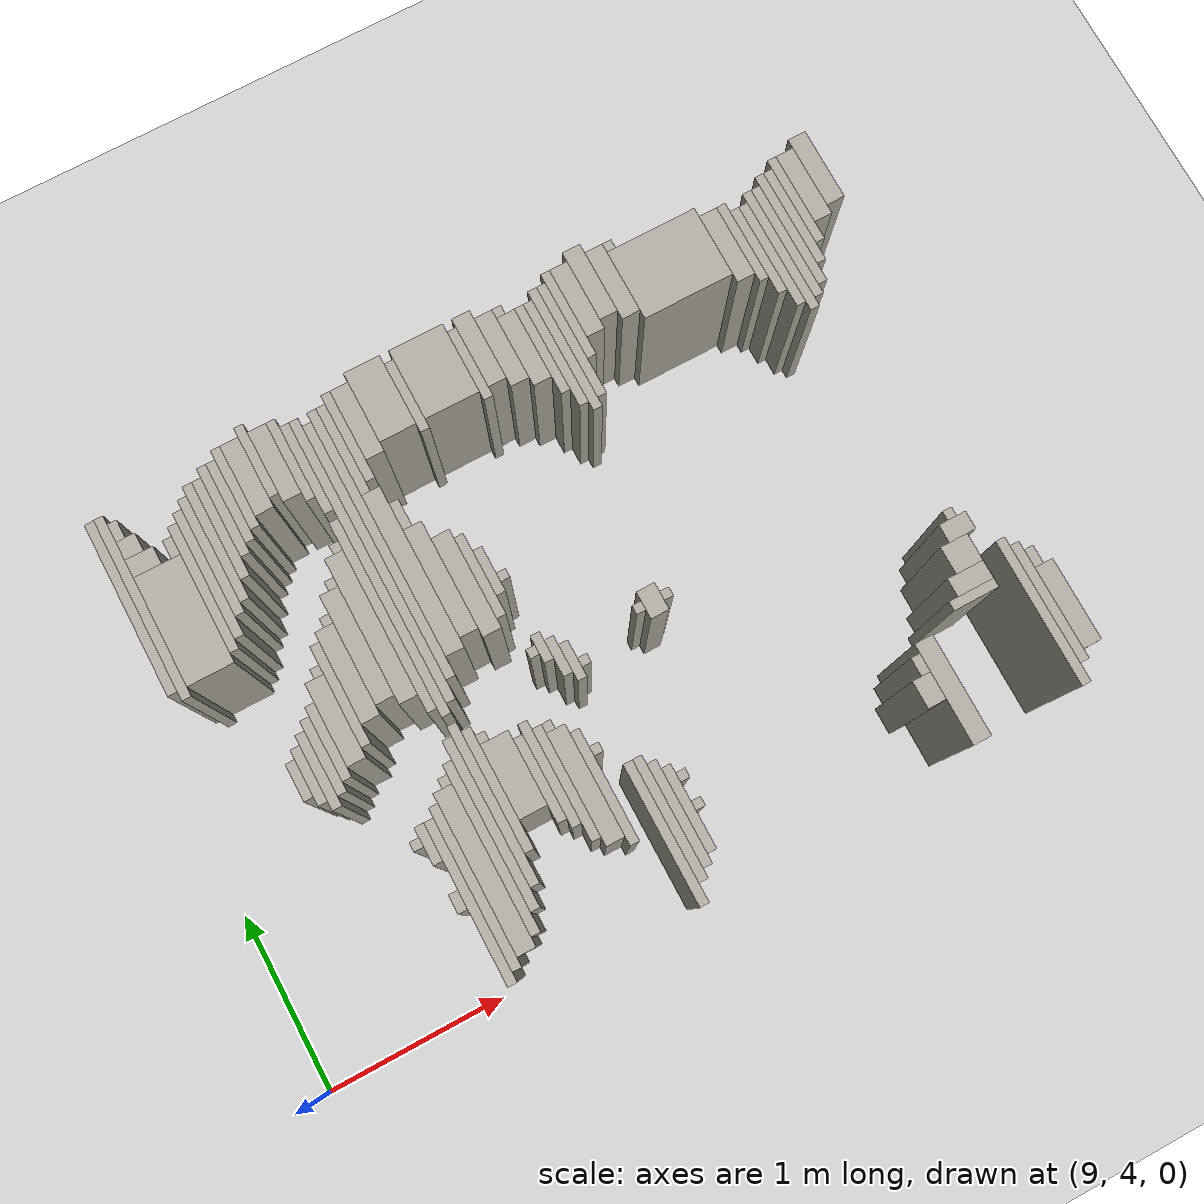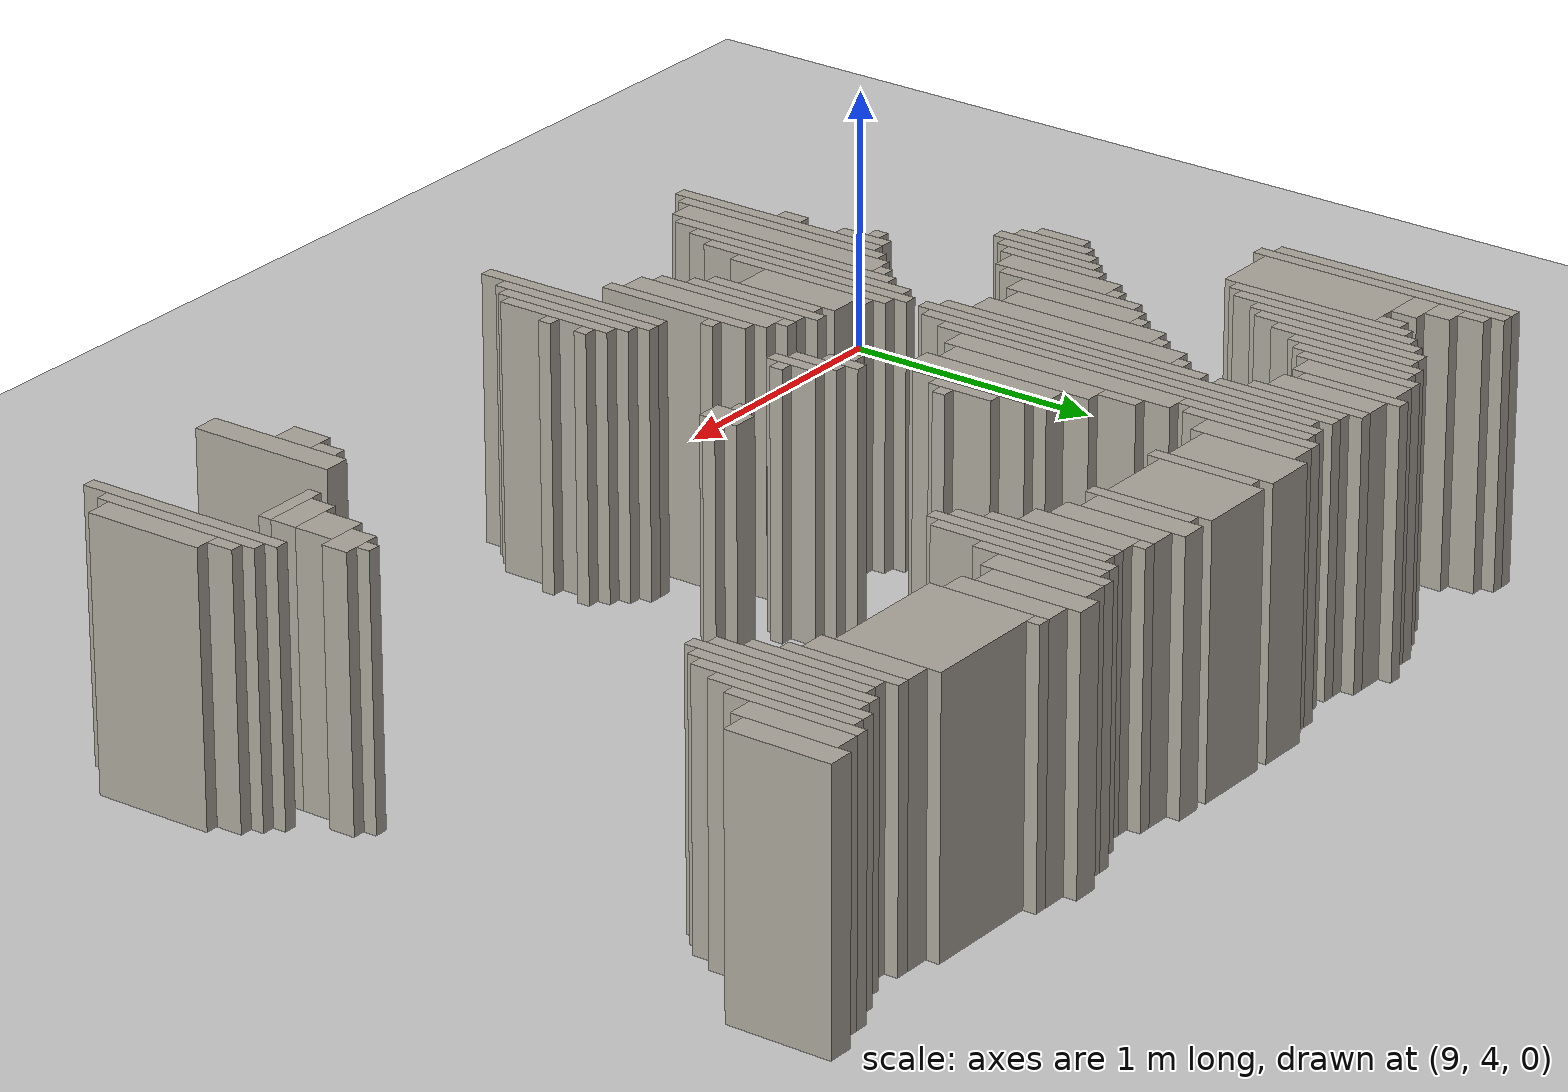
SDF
<sdf version="1.6">
 <world name="fr079_office">
  <include><uri>model://sun</uri></include>
  <include><uri>model://ground_plane</uri></include>
  <model name="fr079_office_walls">
   <static>true</static>
   <link name="w2606">
    <pose>11.077 4.319 0.500 0 0 0</pose>
    <collision name="c"><geometry><box><size>0.050 0.750 1.000</size></box></geometry></collision>
    <visual name="v">
     <geometry><box><size>0.050 0.750 1.000</size></box></geometry>
     <material><ambient>0.68 0.66 0.62 1</ambient><diffuse>0.68 0.66 0.62 1</diffuse></material>
    </visual>
   </link>
   <link name="w2616">
    <pose>12.602 4.269 0.500 0 0 0</pose>
    <collision name="c"><geometry><box><size>0.100 0.550 1.000</size></box></geometry></collision>
    <visual name="v">
     <geometry><box><size>0.100 0.550 1.000</size></box></geometry>
     <material><ambient>0.68 0.66 0.62 1</ambient><diffuse>0.68 0.66 0.62 1</diffuse></material>
    </visual>
   </link>
   <link name="w2617">
    <pose>13.177 4.394 0.500 0 0 0</pose>
    <collision name="c"><geometry><box><size>0.050 0.800 1.000</size></box></geometry></collision>
    <visual name="v">
     <geometry><box><size>0.050 0.800 1.000</size></box></geometry>
     <material><ambient>0.68 0.66 0.62 1</ambient><diffuse>0.68 0.66 0.62 1</diffuse></material>
    </visual>
   </link>
   <link name="w2627">
    <pose>10.127 4.469 0.500 0 0 0</pose>
    <collision name="c"><geometry><box><size>0.050 0.850 1.000</size></box></geometry></collision>
    <visual name="v">
     <geometry><box><size>0.050 0.850 1.000</size></box></geometry>
     <material><ambient>0.68 0.66 0.62 1</ambient><diffuse>0.68 0.66 0.62 1</diffuse></material>
    </visual>
   </link>
   <link name="w2628">
    <pose>11.127 4.369 0.500 0 0 0</pose>
    <collision name="c"><geometry><box><size>0.050 0.650 1.000</size></box></geometry></collision>
    <visual name="v">
     <geometry><box><size>0.050 0.650 1.000</size></box></geometry>
     <material><ambient>0.68 0.66 0.62 1</ambient><diffuse>0.68 0.66 0.62 1</diffuse></material>
    </visual>
   </link>
   <link name="w2641">
    <pose>10.177 4.519 0.500 0 0 0</pose>
    <collision name="c"><geometry><box><size>0.050 0.850 1.000</size></box></geometry></collision>
    <visual name="v">
     <geometry><box><size>0.050 0.850 1.000</size></box></geometry>
     <material><ambient>0.68 0.66 0.62 1</ambient><diffuse>0.68 0.66 0.62 1</diffuse></material>
    </visual>
   </link>
   <link name="w2643">
    <pose>11.177 4.369 0.500 0 0 0</pose>
    <collision name="c"><geometry><box><size>0.050 0.550 1.000</size></box></geometry></collision>
    <visual name="v">
     <geometry><box><size>0.050 0.550 1.000</size></box></geometry>
     <material><ambient>0.68 0.66 0.62 1</ambient><diffuse>0.68 0.66 0.62 1</diffuse></material>
    </visual>
   </link>
   <link name="w2645">
    <pose>13.227 4.419 0.500 0 0 0</pose>
    <collision name="c"><geometry><box><size>0.050 0.650 1.000</size></box></geometry></collision>
    <visual name="v">
     <geometry><box><size>0.050 0.650 1.000</size></box></geometry>
     <material><ambient>0.68 0.66 0.62 1</ambient><diffuse>0.68 0.66 0.62 1</diffuse></material>
    </visual>
   </link>
   <link name="w2654">
    <pose>10.252 4.569 0.500 0 0 0</pose>
    <collision name="c"><geometry><box><size>0.100 0.850 1.000</size></box></geometry></collision>
    <visual name="v">
     <geometry><box><size>0.100 0.850 1.000</size></box></geometry>
     <material><ambient>0.68 0.66 0.62 1</ambient><diffuse>0.68 0.66 0.62 1</diffuse></material>
    </visual>
   </link>
   <link name="w2655">
    <pose>11.227 4.369 0.500 0 0 0</pose>
    <collision name="c"><geometry><box><size>0.050 0.450 1.000</size></box></geometry></collision>
    <visual name="v">
     <geometry><box><size>0.050 0.450 1.000</size></box></geometry>
     <material><ambient>0.68 0.66 0.62 1</ambient><diffuse>0.68 0.66 0.62 1</diffuse></material>
    </visual>
   </link>
   <link name="w2656">
    <pose>13.302 4.369 0.500 0 0 0</pose>
    <collision name="c"><geometry><box><size>0.100 0.450 1.000</size></box></geometry></collision>
    <visual name="v">
     <geometry><box><size>0.100 0.450 1.000</size></box></geometry>
     <material><ambient>0.68 0.66 0.62 1</ambient><diffuse>0.68 0.66 0.62 1</diffuse></material>
    </visual>
   </link>
   <link name="w2669">
    <pose>10.327 4.644 0.500 0 0 0</pose>
    <collision name="c"><geometry><box><size>0.050 0.900 1.000</size></box></geometry></collision>
    <visual name="v">
     <geometry><box><size>0.050 0.900 1.000</size></box></geometry>
     <material><ambient>0.68 0.66 0.62 1</ambient><diffuse>0.68 0.66 0.62 1</diffuse></material>
    </visual>
   </link>
   <link name="w2680">
    <pose>12.502 4.319 0.500 0 0 0</pose>
    <collision name="c"><geometry><box><size>0.100 0.150 1.000</size></box></geometry></collision>
    <visual name="v">
     <geometry><box><size>0.100 0.150 1.000</size></box></geometry>
     <material><ambient>0.68 0.66 0.62 1</ambient><diffuse>0.68 0.66 0.62 1</diffuse></material>
    </visual>
   </link>
   <link name="w2686">
    <pose>10.377 4.744 0.500 0 0 0</pose>
    <collision name="c"><geometry><box><size>0.050 0.900 1.000</size></box></geometry></collision>
    <visual name="v">
     <geometry><box><size>0.050 0.900 1.000</size></box></geometry>
     <material><ambient>0.68 0.66 0.62 1</ambient><diffuse>0.68 0.66 0.62 1</diffuse></material>
    </visual>
   </link>
   <link name="w2692">
    <pose>10.927 4.644 0.500 0 0 0</pose>
    <collision name="c"><geometry><box><size>0.050 0.600 1.000</size></box></geometry></collision>
    <visual name="v">
     <geometry><box><size>0.050 0.600 1.000</size></box></geometry>
     <material><ambient>0.68 0.66 0.62 1</ambient><diffuse>0.68 0.66 0.62 1</diffuse></material>
    </visual>
   </link>
   <link name="w2693">
    <pose>11.277 4.369 0.500 0 0 0</pose>
    <collision name="c"><geometry><box><size>0.050 0.050 1.000</size></box></geometry></collision>
    <visual name="v">
     <geometry><box><size>0.050 0.050 1.000</size></box></geometry>
     <material><ambient>0.68 0.66 0.62 1</ambient><diffuse>0.68 0.66 0.62 1</diffuse></material>
    </visual>
   </link>
   <link name="w2699">
    <pose>10.427 4.819 0.500 0 0 0</pose>
    <collision name="c"><geometry><box><size>0.050 0.850 1.000</size></box></geometry></collision>
    <visual name="v">
     <geometry><box><size>0.050 0.850 1.000</size></box></geometry>
     <material><ambient>0.68 0.66 0.62 1</ambient><diffuse>0.68 0.66 0.62 1</diffuse></material>
    </visual>
   </link>
   <link name="w2700">
    <pose>10.852 4.694 0.500 0 0 0</pose>
    <collision name="c"><geometry><box><size>0.100 0.600 1.000</size></box></geometry></collision>
    <visual name="v">
     <geometry><box><size>0.100 0.600 1.000</size></box></geometry>
     <material><ambient>0.68 0.66 0.62 1</ambient><diffuse>0.68 0.66 0.62 1</diffuse></material>
    </visual>
   </link>
   <link name="w2701">
    <pose>12.527 4.444 0.500 0 0 0</pose>
    <collision name="c"><geometry><box><size>0.050 0.100 1.000</size></box></geometry></collision>
    <visual name="v">
     <geometry><box><size>0.050 0.100 1.000</size></box></geometry>
     <material><ambient>0.68 0.66 0.62 1</ambient><diffuse>0.68 0.66 0.62 1</diffuse></material>
    </visual>
   </link>
   <link name="w2705">
    <pose>10.077 4.494 0.500 0 0 0</pose>
    <collision name="c"><geometry><box><size>0.050 0.100 1.000</size></box></geometry></collision>
    <visual name="v">
     <geometry><box><size>0.050 0.100 1.000</size></box></geometry>
     <material><ambient>0.68 0.66 0.62 1</ambient><diffuse>0.68 0.66 0.62 1</diffuse></material>
    </visual>
   </link>
   <link name="w2706">
    <pose>10.777 4.744 0.500 0 0 0</pose>
    <collision name="c"><geometry><box><size>0.050 0.600 1.000</size></box></geometry></collision>
    <visual name="v">
     <geometry><box><size>0.050 0.600 1.000</size></box></geometry>
     <material><ambient>0.68 0.66 0.62 1</ambient><diffuse>0.68 0.66 0.62 1</diffuse></material>
    </visual>
   </link>
   <link name="w2713">
    <pose>11.277 4.519 0.500 0 0 0</pose>
    <collision name="c"><geometry><box><size>0.050 0.050 1.000</size></box></geometry></collision>
    <visual name="v">
     <geometry><box><size>0.050 0.050 1.000</size></box></geometry>
     <material><ambient>0.68 0.66 0.62 1</ambient><diffuse>0.68 0.66 0.62 1</diffuse></material>
    </visual>
   </link>
   <link name="w2718">
    <pose>10.477 4.869 0.500 0 0 0</pose>
    <collision name="c"><geometry><box><size>0.050 0.650 1.000</size></box></geometry></collision>
    <visual name="v">
     <geometry><box><size>0.050 0.650 1.000</size></box></geometry>
     <material><ambient>0.68 0.66 0.62 1</ambient><diffuse>0.68 0.66 0.62 1</diffuse></material>
    </visual>
   </link>
   <link name="w2719">
    <pose>10.727 4.819 0.500 0 0 0</pose>
    <collision name="c"><geometry><box><size>0.050 0.550 1.000</size></box></geometry></collision>
    <visual name="v">
     <geometry><box><size>0.050 0.550 1.000</size></box></geometry>
     <material><ambient>0.68 0.66 0.62 1</ambient><diffuse>0.68 0.66 0.62 1</diffuse></material>
    </visual>
   </link>
   <link name="w2729">
    <pose>10.677 4.819 0.500 0 0 0</pose>
    <collision name="c"><geometry><box><size>0.050 0.450 1.000</size></box></geometry></collision>
    <visual name="v">
     <geometry><box><size>0.050 0.450 1.000</size></box></geometry>
     <material><ambient>0.68 0.66 0.62 1</ambient><diffuse>0.68 0.66 0.62 1</diffuse></material>
    </visual>
   </link>
   <link name="w2730">
    <pose>12.927 4.619 0.500 0 0 0</pose>
    <collision name="c"><geometry><box><size>0.250 0.050 1.000</size></box></geometry></collision>
    <visual name="v">
     <geometry><box><size>0.250 0.050 1.000</size></box></geometry>
     <material><ambient>0.68 0.66 0.62 1</ambient><diffuse>0.68 0.66 0.62 1</diffuse></material>
    </visual>
   </link>
   <link name="w2731">
    <pose>13.277 4.644 0.500 0 0 0</pose>
    <collision name="c"><geometry><box><size>0.050 0.100 1.000</size></box></geometry></collision>
    <visual name="v">
     <geometry><box><size>0.050 0.100 1.000</size></box></geometry>
     <material><ambient>0.68 0.66 0.62 1</ambient><diffuse>0.68 0.66 0.62 1</diffuse></material>
    </visual>
   </link>
   <link name="w2742">
    <pose>12.952 4.694 0.500 0 0 0</pose>
    <collision name="c"><geometry><box><size>0.200 0.100 1.000</size></box></geometry></collision>
    <visual name="v">
     <geometry><box><size>0.200 0.100 1.000</size></box></geometry>
     <material><ambient>0.68 0.66 0.62 1</ambient><diffuse>0.68 0.66 0.62 1</diffuse></material>
    </visual>
   </link>
   <link name="w2749">
    <pose>10.077 4.794 0.500 0 0 0</pose>
    <collision name="c"><geometry><box><size>0.050 0.200 1.000</size></box></geometry></collision>
    <visual name="v">
     <geometry><box><size>0.050 0.200 1.000</size></box></geometry>
     <material><ambient>0.68 0.66 0.62 1</ambient><diffuse>0.68 0.66 0.62 1</diffuse></material>
    </visual>
   </link>
   <link name="w2750">
    <pose>10.577 4.894 0.500 0 0 0</pose>
    <collision name="c"><geometry><box><size>0.150 0.400 1.000</size></box></geometry></collision>
    <visual name="v">
     <geometry><box><size>0.150 0.400 1.000</size></box></geometry>
     <material><ambient>0.68 0.66 0.62 1</ambient><diffuse>0.68 0.66 0.62 1</diffuse></material>
    </visual>
   </link>
   <link name="w2756">
    <pose>12.977 4.819 0.500 0 0 0</pose>
    <collision name="c"><geometry><box><size>0.150 0.150 1.000</size></box></geometry></collision>
    <visual name="v">
     <geometry><box><size>0.150 0.150 1.000</size></box></geometry>
     <material><ambient>0.68 0.66 0.62 1</ambient><diffuse>0.68 0.66 0.62 1</diffuse></material>
    </visual>
   </link>
   <link name="w2764">
    <pose>10.027 4.819 0.500 0 0 0</pose>
    <collision name="c"><geometry><box><size>0.050 0.050 1.000</size></box></geometry></collision>
    <visual name="v">
     <geometry><box><size>0.050 0.050 1.000</size></box></geometry>
     <material><ambient>0.68 0.66 0.62 1</ambient><diffuse>0.68 0.66 0.62 1</diffuse></material>
    </visual>
   </link>
   <link name="w2765">
    <pose>10.977 4.819 0.500 0 0 0</pose>
    <collision name="c"><geometry><box><size>0.050 0.050 1.000</size></box></geometry></collision>
    <visual name="v">
     <geometry><box><size>0.050 0.050 1.000</size></box></geometry>
     <material><ambient>0.68 0.66 0.62 1</ambient><diffuse>0.68 0.66 0.62 1</diffuse></material>
    </visual>
   </link>
   <link name="w2784">
    <pose>13.027 4.944 0.500 0 0 0</pose>
    <collision name="c"><geometry><box><size>0.150 0.100 1.000</size></box></geometry></collision>
    <visual name="v">
     <geometry><box><size>0.150 0.100 1.000</size></box></geometry>
     <material><ambient>0.68 0.66 0.62 1</ambient><diffuse>0.68 0.66 0.62 1</diffuse></material>
    </visual>
   </link>
   <link name="w2812">
    <pose>10.277 5.019 0.500 0 0 0</pose>
    <collision name="c"><geometry><box><size>0.050 0.050 1.000</size></box></geometry></collision>
    <visual name="v">
     <geometry><box><size>0.050 0.050 1.000</size></box></geometry>
     <material><ambient>0.68 0.66 0.62 1</ambient><diffuse>0.68 0.66 0.62 1</diffuse></material>
    </visual>
   </link>
   <link name="w2813">
    <pose>10.827 5.019 0.500 0 0 0</pose>
    <collision name="c"><geometry><box><size>0.050 0.050 1.000</size></box></geometry></collision>
    <visual name="v">
     <geometry><box><size>0.050 0.050 1.000</size></box></geometry>
     <material><ambient>0.68 0.66 0.62 1</ambient><diffuse>0.68 0.66 0.62 1</diffuse></material>
    </visual>
   </link>
   <link name="w2814">
    <pose>13.027 5.019 0.500 0 0 0</pose>
    <collision name="c"><geometry><box><size>0.050 0.050 1.000</size></box></geometry></collision>
    <visual name="v">
     <geometry><box><size>0.050 0.050 1.000</size></box></geometry>
     <material><ambient>0.68 0.66 0.62 1</ambient><diffuse>0.68 0.66 0.62 1</diffuse></material>
    </visual>
   </link>
   <link name="w2829">
    <pose>10.527 5.119 0.500 0 0 0</pose>
    <collision name="c"><geometry><box><size>0.050 0.050 1.000</size></box></geometry></collision>
    <visual name="v">
     <geometry><box><size>0.050 0.050 1.000</size></box></geometry>
     <material><ambient>0.68 0.66 0.62 1</ambient><diffuse>0.68 0.66 0.62 1</diffuse></material>
    </visual>
   </link>
   <link name="w2839">
    <pose>9.777 5.344 0.500 0 0 0</pose>
    <collision name="c"><geometry><box><size>0.050 0.400 1.000</size></box></geometry></collision>
    <visual name="v">
     <geometry><box><size>0.050 0.400 1.000</size></box></geometry>
     <material><ambient>0.68 0.66 0.62 1</ambient><diffuse>0.68 0.66 0.62 1</diffuse></material>
    </visual>
   </link>
   <link name="w2840">
    <pose>11.077 5.244 0.500 0 0 0</pose>
    <collision name="c"><geometry><box><size>0.050 0.200 1.000</size></box></geometry></collision>
    <visual name="v">
     <geometry><box><size>0.050 0.200 1.000</size></box></geometry>
     <material><ambient>0.68 0.66 0.62 1</ambient><diffuse>0.68 0.66 0.62 1</diffuse></material>
    </visual>
   </link>
   <link name="w2847">
    <pose>9.727 5.344 0.500 0 0 0</pose>
    <collision name="c"><geometry><box><size>0.050 0.300 1.000</size></box></geometry></collision>
    <visual name="v">
     <geometry><box><size>0.050 0.300 1.000</size></box></geometry>
     <material><ambient>0.68 0.66 0.62 1</ambient><diffuse>0.68 0.66 0.62 1</diffuse></material>
    </visual>
   </link>
   <link name="w2848">
    <pose>9.827 5.394 0.500 0 0 0</pose>
    <collision name="c"><geometry><box><size>0.050 0.400 1.000</size></box></geometry></collision>
    <visual name="v">
     <geometry><box><size>0.050 0.400 1.000</size></box></geometry>
     <material><ambient>0.68 0.66 0.62 1</ambient><diffuse>0.68 0.66 0.62 1</diffuse></material>
    </visual>
   </link>
   <link name="w2849">
    <pose>11.027 5.294 0.500 0 0 0</pose>
    <collision name="c"><geometry><box><size>0.050 0.200 1.000</size></box></geometry></collision>
    <visual name="v">
     <geometry><box><size>0.050 0.200 1.000</size></box></geometry>
     <material><ambient>0.68 0.66 0.62 1</ambient><diffuse>0.68 0.66 0.62 1</diffuse></material>
    </visual>
   </link>
   <link name="w2850">
    <pose>11.127 5.219 0.500 0 0 0</pose>
    <collision name="c"><geometry><box><size>0.050 0.050 1.000</size></box></geometry></collision>
    <visual name="v">
     <geometry><box><size>0.050 0.050 1.000</size></box></geometry>
     <material><ambient>0.68 0.66 0.62 1</ambient><diffuse>0.68 0.66 0.62 1</diffuse></material>
    </visual>
   </link>
   <link name="w2859">
    <pose>9.677 5.344 0.500 0 0 0</pose>
    <collision name="c"><geometry><box><size>0.050 0.200 1.000</size></box></geometry></collision>
    <visual name="v">
     <geometry><box><size>0.050 0.200 1.000</size></box></geometry>
     <material><ambient>0.68 0.66 0.62 1</ambient><diffuse>0.68 0.66 0.62 1</diffuse></material>
    </visual>
   </link>
   <link name="w2860">
    <pose>9.877 5.444 0.500 0 0 0</pose>
    <collision name="c"><geometry><box><size>0.050 0.400 1.000</size></box></geometry></collision>
    <visual name="v">
     <geometry><box><size>0.050 0.400 1.000</size></box></geometry>
     <material><ambient>0.68 0.66 0.62 1</ambient><diffuse>0.68 0.66 0.62 1</diffuse></material>
    </visual>
   </link>
   <link name="w2861">
    <pose>11.552 5.319 0.500 0 0 0</pose>
    <collision name="c"><geometry><box><size>0.100 0.150 1.000</size></box></geometry></collision>
    <visual name="v">
     <geometry><box><size>0.100 0.150 1.000</size></box></geometry>
     <material><ambient>0.68 0.66 0.62 1</ambient><diffuse>0.68 0.66 0.62 1</diffuse></material>
    </visual>
   </link>
   <link name="w2872">
    <pose>9.952 5.519 0.500 0 0 0</pose>
    <collision name="c"><geometry><box><size>0.100 0.450 1.000</size></box></geometry></collision>
    <visual name="v">
     <geometry><box><size>0.100 0.450 1.000</size></box></geometry>
     <material><ambient>0.68 0.66 0.62 1</ambient><diffuse>0.68 0.66 0.62 1</diffuse></material>
    </visual>
   </link>
   <link name="w2873">
    <pose>10.427 6.119 0.500 0 0 0</pose>
    <collision name="c"><geometry><box><size>0.050 1.650 1.000</size></box></geometry></collision>
    <visual name="v">
     <geometry><box><size>0.050 1.650 1.000</size></box></geometry>
     <material><ambient>0.68 0.66 0.62 1</ambient><diffuse>0.68 0.66 0.62 1</diffuse></material>
    </visual>
   </link>
   <link name="w2874">
    <pose>10.977 5.369 0.500 0 0 0</pose>
    <collision name="c"><geometry><box><size>0.050 0.150 1.000</size></box></geometry></collision>
    <visual name="v">
     <geometry><box><size>0.050 0.150 1.000</size></box></geometry>
     <material><ambient>0.68 0.66 0.62 1</ambient><diffuse>0.68 0.66 0.62 1</diffuse></material>
    </visual>
   </link>
   <link name="w2875">
    <pose>11.477 5.319 0.500 0 0 0</pose>
    <collision name="c"><geometry><box><size>0.050 0.050 1.000</size></box></geometry></collision>
    <visual name="v">
     <geometry><box><size>0.050 0.050 1.000</size></box></geometry>
     <material><ambient>0.68 0.66 0.62 1</ambient><diffuse>0.68 0.66 0.62 1</diffuse></material>
    </visual>
   </link>
   <link name="w2876">
    <pose>11.627 5.319 0.500 0 0 0</pose>
    <collision name="c"><geometry><box><size>0.050 0.050 1.000</size></box></geometry></collision>
    <visual name="v">
     <geometry><box><size>0.050 0.050 1.000</size></box></geometry>
     <material><ambient>0.68 0.66 0.62 1</ambient><diffuse>0.68 0.66 0.62 1</diffuse></material>
    </visual>
   </link>
   <link name="w2887">
    <pose>10.027 5.619 0.500 0 0 0</pose>
    <collision name="c"><geometry><box><size>0.050 0.550 1.000</size></box></geometry></collision>
    <visual name="v">
     <geometry><box><size>0.050 0.550 1.000</size></box></geometry>
     <material><ambient>0.68 0.66 0.62 1</ambient><diffuse>0.68 0.66 0.62 1</diffuse></material>
    </visual>
   </link>
   <link name="w2888">
    <pose>10.377 5.869 0.500 0 0 0</pose>
    <collision name="c"><geometry><box><size>0.050 1.050 1.000</size></box></geometry></collision>
    <visual name="v">
     <geometry><box><size>0.050 1.050 1.000</size></box></geometry>
     <material><ambient>0.68 0.66 0.62 1</ambient><diffuse>0.68 0.66 0.62 1</diffuse></material>
    </visual>
   </link>
   <link name="w2889">
    <pose>10.477 6.119 0.500 0 0 0</pose>
    <collision name="c"><geometry><box><size>0.050 1.550 1.000</size></box></geometry></collision>
    <visual name="v">
     <geometry><box><size>0.050 1.550 1.000</size></box></geometry>
     <material><ambient>0.68 0.66 0.62 1</ambient><diffuse>0.68 0.66 0.62 1</diffuse></material>
    </visual>
   </link>
   <link name="w2890">
    <pose>10.927 5.369 0.500 0 0 0</pose>
    <collision name="c"><geometry><box><size>0.050 0.050 1.000</size></box></geometry></collision>
    <visual name="v">
     <geometry><box><size>0.050 0.050 1.000</size></box></geometry>
     <material><ambient>0.68 0.66 0.62 1</ambient><diffuse>0.68 0.66 0.62 1</diffuse></material>
    </visual>
   </link>
   <link name="w2909">
    <pose>10.102 5.694 0.500 0 0 0</pose>
    <collision name="c"><geometry><box><size>0.100 0.500 1.000</size></box></geometry></collision>
    <visual name="v">
     <geometry><box><size>0.100 0.500 1.000</size></box></geometry>
     <material><ambient>0.68 0.66 0.62 1</ambient><diffuse>0.68 0.66 0.62 1</diffuse></material>
    </visual>
   </link>
   <link name="w2910">
    <pose>10.302 5.844 0.500 0 0 0</pose>
    <collision name="c"><geometry><box><size>0.100 0.800 1.000</size></box></geometry></collision>
    <visual name="v">
     <geometry><box><size>0.100 0.800 1.000</size></box></geometry>
     <material><ambient>0.68 0.66 0.62 1</ambient><diffuse>0.68 0.66 0.62 1</diffuse></material>
    </visual>
   </link>
   <link name="w2911">
    <pose>10.527 6.194 0.500 0 0 0</pose>
    <collision name="c"><geometry><box><size>0.050 1.500 1.000</size></box></geometry></collision>
    <visual name="v">
     <geometry><box><size>0.050 1.500 1.000</size></box></geometry>
     <material><ambient>0.68 0.66 0.62 1</ambient><diffuse>0.68 0.66 0.62 1</diffuse></material>
    </visual>
   </link>
   <link name="w2925">
    <pose>10.202 5.794 0.500 0 0 0</pose>
    <collision name="c"><geometry><box><size>0.100 0.600 1.000</size></box></geometry></collision>
    <visual name="v">
     <geometry><box><size>0.100 0.600 1.000</size></box></geometry>
     <material><ambient>0.68 0.66 0.62 1</ambient><diffuse>0.68 0.66 0.62 1</diffuse></material>
    </visual>
   </link>
   <link name="w2934">
    <pose>10.602 5.994 0.500 0 0 0</pose>
    <collision name="c"><geometry><box><size>0.100 0.900 1.000</size></box></geometry></collision>
    <visual name="v">
     <geometry><box><size>0.100 0.900 1.000</size></box></geometry>
     <material><ambient>0.68 0.66 0.62 1</ambient><diffuse>0.68 0.66 0.62 1</diffuse></material>
    </visual>
   </link>
   <link name="w2935">
    <pose>10.802 5.819 0.500 0 0 0</pose>
    <collision name="c"><geometry><box><size>0.100 0.550 1.000</size></box></geometry></collision>
    <visual name="v">
     <geometry><box><size>0.100 0.550 1.000</size></box></geometry>
     <material><ambient>0.68 0.66 0.62 1</ambient><diffuse>0.68 0.66 0.62 1</diffuse></material>
    </visual>
   </link>
   <link name="w2949">
    <pose>10.702 5.894 0.500 0 0 0</pose>
    <collision name="c"><geometry><box><size>0.100 0.600 1.000</size></box></geometry></collision>
    <visual name="v">
     <geometry><box><size>0.100 0.600 1.000</size></box></geometry>
     <material><ambient>0.68 0.66 0.62 1</ambient><diffuse>0.68 0.66 0.62 1</diffuse></material>
    </visual>
   </link>
   <link name="w2950">
    <pose>10.877 5.819 0.500 0 0 0</pose>
    <collision name="c"><geometry><box><size>0.050 0.450 1.000</size></box></geometry></collision>
    <visual name="v">
     <geometry><box><size>0.050 0.450 1.000</size></box></geometry>
     <material><ambient>0.68 0.66 0.62 1</ambient><diffuse>0.68 0.66 0.62 1</diffuse></material>
    </visual>
   </link>
   <link name="w2973">
    <pose>10.927 5.819 0.500 0 0 0</pose>
    <collision name="c"><geometry><box><size>0.050 0.250 1.000</size></box></geometry></collision>
    <visual name="v">
     <geometry><box><size>0.050 0.250 1.000</size></box></geometry>
     <material><ambient>0.68 0.66 0.62 1</ambient><diffuse>0.68 0.66 0.62 1</diffuse></material>
    </visual>
   </link>
   <link name="w2982">
    <pose>9.977 5.769 0.500 0 0 0</pose>
    <collision name="c"><geometry><box><size>0.050 0.050 1.000</size></box></geometry></collision>
    <visual name="v">
     <geometry><box><size>0.050 0.050 1.000</size></box></geometry>
     <material><ambient>0.68 0.66 0.62 1</ambient><diffuse>0.68 0.66 0.62 1</diffuse></material>
    </visual>
   </link>
   <link name="w2983">
    <pose>10.977 5.769 0.500 0 0 0</pose>
    <collision name="c"><geometry><box><size>0.050 0.050 1.000</size></box></geometry></collision>
    <visual name="v">
     <geometry><box><size>0.050 0.050 1.000</size></box></geometry>
     <material><ambient>0.68 0.66 0.62 1</ambient><diffuse>0.68 0.66 0.62 1</diffuse></material>
    </visual>
   </link>
   <link name="w3017">
    <pose>9.377 6.444 0.500 0 0 0</pose>
    <collision name="c"><geometry><box><size>0.050 1.000 1.000</size></box></geometry></collision>
    <visual name="v">
     <geometry><box><size>0.050 1.000 1.000</size></box></geometry>
     <material><ambient>0.68 0.66 0.62 1</ambient><diffuse>0.68 0.66 0.62 1</diffuse></material>
    </visual>
   </link>
   <link name="w3018">
    <pose>10.127 5.969 0.500 0 0 0</pose>
    <collision name="c"><geometry><box><size>0.050 0.050 1.000</size></box></geometry></collision>
    <visual name="v">
     <geometry><box><size>0.050 0.050 1.000</size></box></geometry>
     <material><ambient>0.68 0.66 0.62 1</ambient><diffuse>0.68 0.66 0.62 1</diffuse></material>
    </visual>
   </link>
   <link name="w3027">
    <pose>9.327 6.469 0.500 0 0 0</pose>
    <collision name="c"><geometry><box><size>0.050 0.950 1.000</size></box></geometry></collision>
    <visual name="v">
     <geometry><box><size>0.050 0.950 1.000</size></box></geometry>
     <material><ambient>0.68 0.66 0.62 1</ambient><diffuse>0.68 0.66 0.62 1</diffuse></material>
    </visual>
   </link>
   <link name="w3028">
    <pose>9.527 6.294 0.500 0 0 0</pose>
    <collision name="c"><geometry><box><size>0.250 0.600 1.000</size></box></geometry></collision>
    <visual name="v">
     <geometry><box><size>0.250 0.600 1.000</size></box></geometry>
     <material><ambient>0.68 0.66 0.62 1</ambient><diffuse>0.68 0.66 0.62 1</diffuse></material>
    </visual>
   </link>
   <link name="w3035">
    <pose>9.677 6.394 0.500 0 0 0</pose>
    <collision name="c"><geometry><box><size>0.050 0.700 1.000</size></box></geometry></collision>
    <visual name="v">
     <geometry><box><size>0.050 0.700 1.000</size></box></geometry>
     <material><ambient>0.68 0.66 0.62 1</ambient><diffuse>0.68 0.66 0.62 1</diffuse></material>
    </visual>
   </link>
   <link name="w3048">
    <pose>9.727 6.444 0.500 0 0 0</pose>
    <collision name="c"><geometry><box><size>0.050 0.700 1.000</size></box></geometry></collision>
    <visual name="v">
     <geometry><box><size>0.050 0.700 1.000</size></box></geometry>
     <material><ambient>0.68 0.66 0.62 1</ambient><diffuse>0.68 0.66 0.62 1</diffuse></material>
    </visual>
   </link>
   <link name="w3049">
    <pose>10.227 6.119 0.500 0 0 0</pose>
    <collision name="c"><geometry><box><size>0.050 0.050 1.000</size></box></geometry></collision>
    <visual name="v">
     <geometry><box><size>0.050 0.050 1.000</size></box></geometry>
     <material><ambient>0.68 0.66 0.62 1</ambient><diffuse>0.68 0.66 0.62 1</diffuse></material>
    </visual>
   </link>
   <link name="w3067">
    <pose>9.777 6.519 0.500 0 0 0</pose>
    <collision name="c"><geometry><box><size>0.050 0.650 1.000</size></box></geometry></collision>
    <visual name="v">
     <geometry><box><size>0.050 0.650 1.000</size></box></geometry>
     <material><ambient>0.68 0.66 0.62 1</ambient><diffuse>0.68 0.66 0.62 1</diffuse></material>
    </visual>
   </link>
   <link name="w3068">
    <pose>10.677 6.269 0.500 0 0 0</pose>
    <collision name="c"><geometry><box><size>0.050 0.150 1.000</size></box></geometry></collision>
    <visual name="v">
     <geometry><box><size>0.050 0.150 1.000</size></box></geometry>
     <material><ambient>0.68 0.66 0.62 1</ambient><diffuse>0.68 0.66 0.62 1</diffuse></material>
    </visual>
   </link>
   <link name="w3079">
    <pose>9.827 6.569 0.500 0 0 0</pose>
    <collision name="c"><geometry><box><size>0.050 0.650 1.000</size></box></geometry></collision>
    <visual name="v">
     <geometry><box><size>0.050 0.650 1.000</size></box></geometry>
     <material><ambient>0.68 0.66 0.62 1</ambient><diffuse>0.68 0.66 0.62 1</diffuse></material>
    </visual>
   </link>
   <link name="w3080">
    <pose>10.327 6.269 0.500 0 0 0</pose>
    <collision name="c"><geometry><box><size>0.050 0.050 1.000</size></box></geometry></collision>
    <visual name="v">
     <geometry><box><size>0.050 0.050 1.000</size></box></geometry>
     <material><ambient>0.68 0.66 0.62 1</ambient><diffuse>0.68 0.66 0.62 1</diffuse></material>
    </visual>
   </link>
   <link name="w3081">
    <pose>12.977 6.594 0.500 0 0 0</pose>
    <collision name="c"><geometry><box><size>0.050 0.700 1.000</size></box></geometry></collision>
    <visual name="v">
     <geometry><box><size>0.050 0.700 1.000</size></box></geometry>
     <material><ambient>0.68 0.66 0.62 1</ambient><diffuse>0.68 0.66 0.62 1</diffuse></material>
    </visual>
   </link>
   <link name="w3090">
    <pose>11.777 6.644 0.500 0 0 0</pose>
    <collision name="c"><geometry><box><size>0.050 0.700 1.000</size></box></geometry></collision>
    <visual name="v">
     <geometry><box><size>0.050 0.700 1.000</size></box></geometry>
     <material><ambient>0.68 0.66 0.62 1</ambient><diffuse>0.68 0.66 0.62 1</diffuse></material>
    </visual>
   </link>
   <link name="w3091">
    <pose>12.927 6.594 0.500 0 0 0</pose>
    <collision name="c"><geometry><box><size>0.050 0.600 1.000</size></box></geometry></collision>
    <visual name="v">
     <geometry><box><size>0.050 0.600 1.000</size></box></geometry>
     <material><ambient>0.68 0.66 0.62 1</ambient><diffuse>0.68 0.66 0.62 1</diffuse></material>
    </visual>
   </link>
   <link name="w3092">
    <pose>13.027 6.619 0.500 0 0 0</pose>
    <collision name="c"><geometry><box><size>0.050 0.650 1.000</size></box></geometry></collision>
    <visual name="v">
     <geometry><box><size>0.050 0.650 1.000</size></box></geometry>
     <material><ambient>0.68 0.66 0.62 1</ambient><diffuse>0.68 0.66 0.62 1</diffuse></material>
    </visual>
   </link>
   <link name="w3102">
    <pose>9.877 6.619 0.500 0 0 0</pose>
    <collision name="c"><geometry><box><size>0.050 0.550 1.000</size></box></geometry></collision>
    <visual name="v">
     <geometry><box><size>0.050 0.550 1.000</size></box></geometry>
     <material><ambient>0.68 0.66 0.62 1</ambient><diffuse>0.68 0.66 0.62 1</diffuse></material>
    </visual>
   </link>
   <link name="w3103">
    <pose>11.727 6.644 0.500 0 0 0</pose>
    <collision name="c"><geometry><box><size>0.050 0.600 1.000</size></box></geometry></collision>
    <visual name="v">
     <geometry><box><size>0.050 0.600 1.000</size></box></geometry>
     <material><ambient>0.68 0.66 0.62 1</ambient><diffuse>0.68 0.66 0.62 1</diffuse></material>
    </visual>
   </link>
   <link name="w3104">
    <pose>11.827 6.669 0.500 0 0 0</pose>
    <collision name="c"><geometry><box><size>0.050 0.650 1.000</size></box></geometry></collision>
    <visual name="v">
     <geometry><box><size>0.050 0.650 1.000</size></box></geometry>
     <material><ambient>0.68 0.66 0.62 1</ambient><diffuse>0.68 0.66 0.62 1</diffuse></material>
    </visual>
   </link>
   <link name="w3105">
    <pose>13.077 6.669 0.500 0 0 0</pose>
    <collision name="c"><geometry><box><size>0.050 0.650 1.000</size></box></geometry></collision>
    <visual name="v">
     <geometry><box><size>0.050 0.650 1.000</size></box></geometry>
     <material><ambient>0.68 0.66 0.62 1</ambient><diffuse>0.68 0.66 0.62 1</diffuse></material>
    </visual>
   </link>
   <link name="w3113">
    <pose>12.877 6.644 0.500 0 0 0</pose>
    <collision name="c"><geometry><box><size>0.050 0.500 1.000</size></box></geometry></collision>
    <visual name="v">
     <geometry><box><size>0.050 0.500 1.000</size></box></geometry>
     <material><ambient>0.68 0.66 0.62 1</ambient><diffuse>0.68 0.66 0.62 1</diffuse></material>
    </visual>
   </link>
   <link name="w3127">
    <pose>9.927 6.694 0.500 0 0 0</pose>
    <collision name="c"><geometry><box><size>0.050 0.500 1.000</size></box></geometry></collision>
    <visual name="v">
     <geometry><box><size>0.050 0.500 1.000</size></box></geometry>
     <material><ambient>0.68 0.66 0.62 1</ambient><diffuse>0.68 0.66 0.62 1</diffuse></material>
    </visual>
   </link>
   <link name="w3128">
    <pose>10.377 6.694 0.500 0 0 0</pose>
    <collision name="c"><geometry><box><size>0.050 0.500 1.000</size></box></geometry></collision>
    <visual name="v">
     <geometry><box><size>0.050 0.500 1.000</size></box></geometry>
     <material><ambient>0.68 0.66 0.62 1</ambient><diffuse>0.68 0.66 0.62 1</diffuse></material>
    </visual>
   </link>
   <link name="w3129">
    <pose>10.577 6.694 0.500 0 0 0</pose>
    <collision name="c"><geometry><box><size>0.050 0.500 1.000</size></box></geometry></collision>
    <visual name="v">
     <geometry><box><size>0.050 0.500 1.000</size></box></geometry>
     <material><ambient>0.68 0.66 0.62 1</ambient><diffuse>0.68 0.66 0.62 1</diffuse></material>
    </visual>
   </link>
   <link name="w3130">
    <pose>11.677 6.694 0.500 0 0 0</pose>
    <collision name="c"><geometry><box><size>0.050 0.500 1.000</size></box></geometry></collision>
    <visual name="v">
     <geometry><box><size>0.050 0.500 1.000</size></box></geometry>
     <material><ambient>0.68 0.66 0.62 1</ambient><diffuse>0.68 0.66 0.62 1</diffuse></material>
    </visual>
   </link>
   <link name="w3131">
    <pose>13.127 6.719 0.500 0 0 0</pose>
    <collision name="c"><geometry><box><size>0.050 0.550 1.000</size></box></geometry></collision>
    <visual name="v">
     <geometry><box><size>0.050 0.550 1.000</size></box></geometry>
     <material><ambient>0.68 0.66 0.62 1</ambient><diffuse>0.68 0.66 0.62 1</diffuse></material>
    </visual>
   </link>
   <link name="w3148">
    <pose>9.977 6.719 0.500 0 0 0</pose>
    <collision name="c"><geometry><box><size>0.050 0.450 1.000</size></box></geometry></collision>
    <visual name="v">
     <geometry><box><size>0.050 0.450 1.000</size></box></geometry>
     <material><ambient>0.68 0.66 0.62 1</ambient><diffuse>0.68 0.66 0.62 1</diffuse></material>
    </visual>
   </link>
   <link name="w3149">
    <pose>10.627 6.744 0.500 0 0 0</pose>
    <collision name="c"><geometry><box><size>0.050 0.500 1.000</size></box></geometry></collision>
    <visual name="v">
     <geometry><box><size>0.050 0.500 1.000</size></box></geometry>
     <material><ambient>0.68 0.66 0.62 1</ambient><diffuse>0.68 0.66 0.62 1</diffuse></material>
    </visual>
   </link>
   <link name="w3150">
    <pose>12.827 6.719 0.500 0 0 0</pose>
    <collision name="c"><geometry><box><size>0.050 0.450 1.000</size></box></geometry></collision>
    <visual name="v">
     <geometry><box><size>0.050 0.450 1.000</size></box></geometry>
     <material><ambient>0.68 0.66 0.62 1</ambient><diffuse>0.68 0.66 0.62 1</diffuse></material>
    </visual>
   </link>
   <link name="w3163">
    <pose>10.027 6.769 0.500 0 0 0</pose>
    <collision name="c"><geometry><box><size>0.050 0.450 1.000</size></box></geometry></collision>
    <visual name="v">
     <geometry><box><size>0.050 0.450 1.000</size></box></geometry>
     <material><ambient>0.68 0.66 0.62 1</ambient><diffuse>0.68 0.66 0.62 1</diffuse></material>
    </visual>
   </link>
   <link name="w3164">
    <pose>10.327 6.769 0.500 0 0 0</pose>
    <collision name="c"><geometry><box><size>0.050 0.450 1.000</size></box></geometry></collision>
    <visual name="v">
     <geometry><box><size>0.050 0.450 1.000</size></box></geometry>
     <material><ambient>0.68 0.66 0.62 1</ambient><diffuse>0.68 0.66 0.62 1</diffuse></material>
    </visual>
   </link>
   <link name="w3165">
    <pose>11.602 6.744 0.500 0 0 0</pose>
    <collision name="c"><geometry><box><size>0.100 0.400 1.000</size></box></geometry></collision>
    <visual name="v">
     <geometry><box><size>0.100 0.400 1.000</size></box></geometry>
     <material><ambient>0.68 0.66 0.62 1</ambient><diffuse>0.68 0.66 0.62 1</diffuse></material>
    </visual>
   </link>
   <link name="w3166">
    <pose>11.877 6.794 0.500 0 0 0</pose>
    <collision name="c"><geometry><box><size>0.050 0.500 1.000</size></box></geometry></collision>
    <visual name="v">
     <geometry><box><size>0.050 0.500 1.000</size></box></geometry>
     <material><ambient>0.68 0.66 0.62 1</ambient><diffuse>0.68 0.66 0.62 1</diffuse></material>
    </visual>
   </link>
   <link name="w3167">
    <pose>12.752 6.744 0.500 0 0 0</pose>
    <collision name="c"><geometry><box><size>0.100 0.400 1.000</size></box></geometry></collision>
    <visual name="v">
     <geometry><box><size>0.100 0.400 1.000</size></box></geometry>
     <material><ambient>0.68 0.66 0.62 1</ambient><diffuse>0.68 0.66 0.62 1</diffuse></material>
    </visual>
   </link>
   <link name="w3168">
    <pose>13.177 6.794 0.500 0 0 0</pose>
    <collision name="c"><geometry><box><size>0.050 0.500 1.000</size></box></geometry></collision>
    <visual name="v">
     <geometry><box><size>0.050 0.500 1.000</size></box></geometry>
     <material><ambient>0.68 0.66 0.62 1</ambient><diffuse>0.68 0.66 0.62 1</diffuse></material>
    </visual>
   </link>
   <link name="w3186">
    <pose>9.477 6.644 0.500 0 0 0</pose>
    <collision name="c"><geometry><box><size>0.150 0.100 1.000</size></box></geometry></collision>
    <visual name="v">
     <geometry><box><size>0.150 0.100 1.000</size></box></geometry>
     <material><ambient>0.68 0.66 0.62 1</ambient><diffuse>0.68 0.66 0.62 1</diffuse></material>
    </visual>
   </link>
   <link name="w3187">
    <pose>9.627 6.644 0.500 0 0 0</pose>
    <collision name="c"><geometry><box><size>0.050 0.100 1.000</size></box></geometry></collision>
    <visual name="v">
     <geometry><box><size>0.050 0.100 1.000</size></box></geometry>
     <material><ambient>0.68 0.66 0.62 1</ambient><diffuse>0.68 0.66 0.62 1</diffuse></material>
    </visual>
   </link>
   <link name="w3188">
    <pose>10.102 6.794 0.500 0 0 0</pose>
    <collision name="c"><geometry><box><size>0.100 0.400 1.000</size></box></geometry></collision>
    <visual name="v">
     <geometry><box><size>0.100 0.400 1.000</size></box></geometry>
     <material><ambient>0.68 0.66 0.62 1</ambient><diffuse>0.68 0.66 0.62 1</diffuse></material>
    </visual>
   </link>
   <link name="w3189">
    <pose>10.252 6.794 0.500 0 0 0</pose>
    <collision name="c"><geometry><box><size>0.100 0.400 1.000</size></box></geometry></collision>
    <visual name="v">
     <geometry><box><size>0.100 0.400 1.000</size></box></geometry>
     <material><ambient>0.68 0.66 0.62 1</ambient><diffuse>0.68 0.66 0.62 1</diffuse></material>
    </visual>
   </link>
   <link name="w3190">
    <pose>10.702 6.794 0.500 0 0 0</pose>
    <collision name="c"><geometry><box><size>0.100 0.400 1.000</size></box></geometry></collision>
    <visual name="v">
     <geometry><box><size>0.100 0.400 1.000</size></box></geometry>
     <material><ambient>0.68 0.66 0.62 1</ambient><diffuse>0.68 0.66 0.62 1</diffuse></material>
    </visual>
   </link>
   <link name="w3191">
    <pose>10.977 6.794 0.500 0 0 0</pose>
    <collision name="c"><geometry><box><size>0.050 0.400 1.000</size></box></geometry></collision>
    <visual name="v">
     <geometry><box><size>0.050 0.400 1.000</size></box></geometry>
     <material><ambient>0.68 0.66 0.62 1</ambient><diffuse>0.68 0.66 0.62 1</diffuse></material>
    </visual>
   </link>
   <link name="w3192">
    <pose>11.327 6.794 0.500 0 0 0</pose>
    <collision name="c"><geometry><box><size>0.050 0.400 1.000</size></box></geometry></collision>
    <visual name="v">
     <geometry><box><size>0.050 0.400 1.000</size></box></geometry>
     <material><ambient>0.68 0.66 0.62 1</ambient><diffuse>0.68 0.66 0.62 1</diffuse></material>
    </visual>
   </link>
   <link name="w3193">
    <pose>11.502 6.794 0.500 0 0 0</pose>
    <collision name="c"><geometry><box><size>0.100 0.400 1.000</size></box></geometry></collision>
    <visual name="v">
     <geometry><box><size>0.100 0.400 1.000</size></box></geometry>
     <material><ambient>0.68 0.66 0.62 1</ambient><diffuse>0.68 0.66 0.62 1</diffuse></material>
    </visual>
   </link>
   <link name="w3194">
    <pose>12.452 6.794 0.500 0 0 0</pose>
    <collision name="c"><geometry><box><size>0.500 0.400 1.000</size></box></geometry></collision>
    <visual name="v">
     <geometry><box><size>0.500 0.400 1.000</size></box></geometry>
     <material><ambient>0.68 0.66 0.62 1</ambient><diffuse>0.68 0.66 0.62 1</diffuse></material>
    </visual>
   </link>
   <link name="w3218">
    <pose>10.177 6.844 0.500 0 0 0</pose>
    <collision name="c"><geometry><box><size>0.050 0.400 1.000</size></box></geometry></collision>
    <visual name="v">
     <geometry><box><size>0.050 0.400 1.000</size></box></geometry>
     <material><ambient>0.68 0.66 0.62 1</ambient><diffuse>0.68 0.66 0.62 1</diffuse></material>
    </visual>
   </link>
   <link name="w3219">
    <pose>10.852 6.844 0.500 0 0 0</pose>
    <collision name="c"><geometry><box><size>0.200 0.400 1.000</size></box></geometry></collision>
    <visual name="v">
     <geometry><box><size>0.200 0.400 1.000</size></box></geometry>
     <material><ambient>0.68 0.66 0.62 1</ambient><diffuse>0.68 0.66 0.62 1</diffuse></material>
    </visual>
   </link>
   <link name="w3220">
    <pose>11.152 6.844 0.500 0 0 0</pose>
    <collision name="c"><geometry><box><size>0.300 0.400 1.000</size></box></geometry></collision>
    <visual name="v">
     <geometry><box><size>0.300 0.400 1.000</size></box></geometry>
     <material><ambient>0.68 0.66 0.62 1</ambient><diffuse>0.68 0.66 0.62 1</diffuse></material>
    </visual>
   </link>
   <link name="w3221">
    <pose>11.402 6.844 0.500 0 0 0</pose>
    <collision name="c"><geometry><box><size>0.100 0.400 1.000</size></box></geometry></collision>
    <visual name="v">
     <geometry><box><size>0.100 0.400 1.000</size></box></geometry>
     <material><ambient>0.68 0.66 0.62 1</ambient><diffuse>0.68 0.66 0.62 1</diffuse></material>
    </visual>
   </link>
   <link name="w3222">
    <pose>11.952 6.844 0.500 0 0 0</pose>
    <collision name="c"><geometry><box><size>0.100 0.400 1.000</size></box></geometry></collision>
    <visual name="v">
     <geometry><box><size>0.100 0.400 1.000</size></box></geometry>
     <material><ambient>0.68 0.66 0.62 1</ambient><diffuse>0.68 0.66 0.62 1</diffuse></material>
    </visual>
   </link>
   <link name="w3223">
    <pose>12.152 6.844 0.500 0 0 0</pose>
    <collision name="c"><geometry><box><size>0.100 0.400 1.000</size></box></geometry></collision>
    <visual name="v">
     <geometry><box><size>0.100 0.400 1.000</size></box></geometry>
     <material><ambient>0.68 0.66 0.62 1</ambient><diffuse>0.68 0.66 0.62 1</diffuse></material>
    </visual>
   </link>
   <link name="w3224">
    <pose>13.252 6.844 0.500 0 0 0</pose>
    <collision name="c"><geometry><box><size>0.100 0.400 1.000</size></box></geometry></collision>
    <visual name="v">
     <geometry><box><size>0.100 0.400 1.000</size></box></geometry>
     <material><ambient>0.68 0.66 0.62 1</ambient><diffuse>0.68 0.66 0.62 1</diffuse></material>
    </visual>
   </link>
   <link name="w3258">
    <pose>9.452 6.744 0.500 0 0 0</pose>
    <collision name="c"><geometry><box><size>0.100 0.100 1.000</size></box></geometry></collision>
    <visual name="v">
     <geometry><box><size>0.100 0.100 1.000</size></box></geometry>
     <material><ambient>0.68 0.66 0.62 1</ambient><diffuse>0.68 0.66 0.62 1</diffuse></material>
    </visual>
   </link>
   <link name="w3259">
    <pose>12.052 6.894 0.500 0 0 0</pose>
    <collision name="c"><geometry><box><size>0.100 0.400 1.000</size></box></geometry></collision>
    <visual name="v">
     <geometry><box><size>0.100 0.400 1.000</size></box></geometry>
     <material><ambient>0.68 0.66 0.62 1</ambient><diffuse>0.68 0.66 0.62 1</diffuse></material>
    </visual>
   </link>
   <link name="w3260">
    <pose>13.352 6.894 0.500 0 0 0</pose>
    <collision name="c"><geometry><box><size>0.100 0.400 1.000</size></box></geometry></collision>
    <visual name="v">
     <geometry><box><size>0.100 0.400 1.000</size></box></geometry>
     <material><ambient>0.68 0.66 0.62 1</ambient><diffuse>0.68 0.66 0.62 1</diffuse></material>
    </visual>
   </link>
   <link name="w3289">
    <pose>9.427 6.844 0.500 0 0 0</pose>
    <collision name="c"><geometry><box><size>0.050 0.100 1.000</size></box></geometry></collision>
    <visual name="v">
     <geometry><box><size>0.050 0.100 1.000</size></box></geometry>
     <material><ambient>0.68 0.66 0.62 1</ambient><diffuse>0.68 0.66 0.62 1</diffuse></material>
    </visual>
   </link>
   <link name="w3302">
    <pose>11.577 6.969 0.500 0 0 0</pose>
    <collision name="c"><geometry><box><size>0.050 0.050 1.000</size></box></geometry></collision>
    <visual name="v">
     <geometry><box><size>0.050 0.050 1.000</size></box></geometry>
     <material><ambient>0.68 0.66 0.62 1</ambient><diffuse>0.68 0.66 0.62 1</diffuse></material>
    </visual>
   </link>
   <link name="w3305">
    <pose>12.227 7.019 0.500 0 0 0</pose>
    <collision name="c"><geometry><box><size>0.050 0.050 1.000</size></box></geometry></collision>
    <visual name="v">
     <geometry><box><size>0.050 0.050 1.000</size></box></geometry>
     <material><ambient>0.68 0.66 0.62 1</ambient><diffuse>0.68 0.66 0.62 1</diffuse></material>
    </visual>
   </link>
  </model>
 </world>
</sdf>
